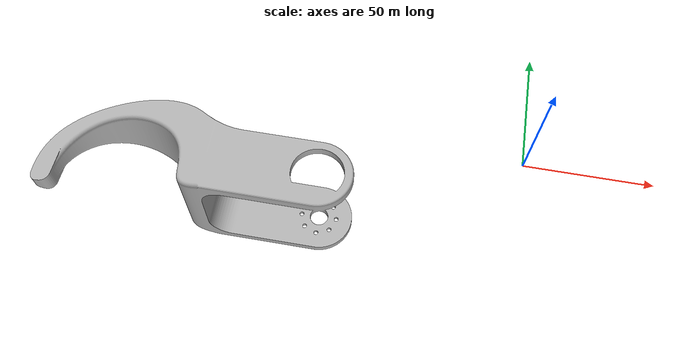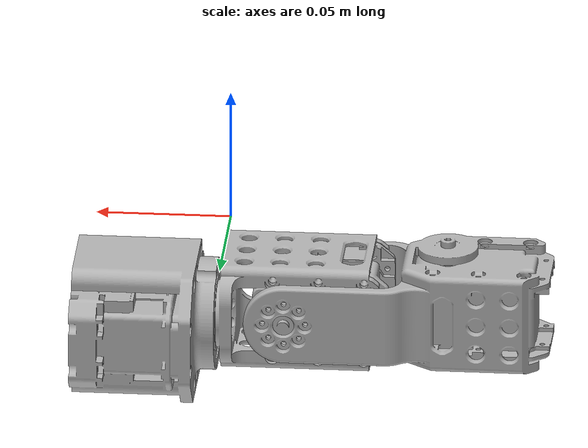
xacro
<?xml version="1.0"?>
<robot name="sence" xmlns:xacro="http://ros.org/wiki/xacro">

  <!-- Set up some variables and defaults -->
  <xacro:property name="pi" value="3.1415" />

  <material name="silver">
    <color rgba="0.7 0.7 0.7 1"/>
  </material>

  <xacro:macro name="default_inertial" params="mass">
    <inertial>
      <mass value="${mass}" />
      <inertia ixx="1.0" ixy="0.0" ixz="0.0" iyy="1.0" iyz="0.0" izz="1.0" />
    </inertial>
  </xacro:macro>

  <!-- Define Links-->
  <link name="base_link" />

  <link name="link1">
    <inertial>
        <origin xyz="0.029044932513473305 0.010265080427010284 -0.03814827760382364" rpy="0 0 0"/>
        <mass value="0.15187448298114298"/>
        <inertia ixx="5.3e-05" iyy="6.1e-05" izz="6.9e-05" ixy="-6e-06" iyz="0.0" ixz="0.0"/>
      </inertial>
      <visual>
        <origin xyz="0 0 0" rpy="0 0 0"/>
        <geometry>
          <mesh filename="package://test_sence/meshes/base_link.stl" />
        </geometry>
        <material name="silver"/>
      </visual>
      <collision>
        <origin xyz="0 0 0" rpy="0 0 0"/>
        <geometry>
          <mesh filename="package://test_sence/meshes/base_link.stl" />
        </geometry>
      </collision>
  </link>

  <link name="link2">
    <inertial>
        <origin xyz="-0.04078394902352935 -0.013231283994066126 0.00021684450055575039" rpy="0 0 0"/>
        <mass value="0.09734685103972182"/>
        <inertia ixx="2.2e-05" iyy="3.6e-05" izz="4e-05" ixy="-2e-06" iyz="0.0" ixz="0.0"/>
      </inertial>
      <visual>
        <origin xyz="-0.01348 -0.002676 0.038139" rpy="0 0 0"/>
        <geometry>
          <mesh filename="package://test_sence/meshes/HMMR_Leg_J2_v1_1.stl" />
        </geometry>
        <material name="silver"/>
      </visual>
      <collision>
        <origin xyz="-0.01348 -0.002676 0.038139" rpy="0 0 0"/>
        <geometry>
          <mesh filename="package://test_sence/meshes/HMMR_Leg_J2_v1_1.stl" />
        </geometry>
      </collision>
  </link>

  <link name="link3">
    <inertial>
        <origin xyz="-0.06366942125676311 -0.021943300476205383 0.0024103683252244337" rpy="0 0 0"/>
        <mass value="0.1208747488020619"/>
        <inertia ixx="3.4e-05" iyy="0.000102" izz="0.000104" ixy="1.4e-05" iyz="-1e-06" ixz="2e-06"/>
      </inertial>
      <visual>
        <origin xyz="0.020447 -0.009456 0.037939" rpy="0 0 0"/>
        <geometry>
          <mesh filename="package://test_sence/meshes/HMMR_Leg_J3_v1_1.stl" />
        </geometry>
        <material name="silver"/>
      </visual>
      <collision>
        <origin xyz="0.020447 -0.009456 0.037939" rpy="0 0 0"/>
        <geometry>
          <mesh filename="package://test_sence/meshes/HMMR_Leg_J3_v1_1.stl" />
        </geometry>
      </collision>
  </link>

  <link name="link4">
    <inertial>
        <origin xyz="-0.06827181090766318 0.01066089288586344 0.020893759814543007" rpy="0 0 0"/>
        <mass value="0.052701725493830516"/>
        <inertia ixx="1.8e-05" iyy="7.3e-05" izz="7.2e-05" ixy="1.4e-05" iyz="0.0" ixz="-1e-06"/>
      </inertial>
      <visual>
        <origin xyz="0.085454 0.010544 0.057414" rpy="0 0 0"/>
        <geometry>
          <mesh filename="package://test_sence/meshes/HMMR_Leg_J4_v1_1.stl" />
        </geometry>
        <material name="silver"/>
      </visual>
      <collision>
        <origin xyz="0.085454 0.010544 0.057414" rpy="0 0 0"/>
        <geometry>
          <mesh filename="package://test_sence/meshes/HMMR_Leg_J4_v1_1.stl" />
        </geometry>
      </collision>
  </link>

  <!-- Define Joints -->
  <joint name="joint0" type="fixed">
    <parent link="base_link"/>
    <child link="link1"/>
    <axis xyz="0 0 1"/>
    <origin xyz="0 0 0"/>
  </joint>

  <joint name="joint1" type="revolute">
    <parent link="link1"/>
    <child link="link2"/>
    <axis xyz="1 0 0"/>
    <origin xyz="0.01348 0.002676 -0.038139" rpy="0 0 0"/>
    <limit upper="4" lower="-4" effort="30" velocity="10"/>
  </joint>

  <joint name="joint2" type="revolute">
    <parent link="link2"/>
    <child link="link3"/>
    <axis xyz="0 1 0"/>
    <origin xyz="-0.033927 0.00678 0.0002" rpy="0 0 0"/>
    <limit upper="1.919862" lower="-1.919862" effort="30" velocity="10"/>
  </joint>

  <joint name="joint3" type="revolute">
    <parent link="link3"/>
    <child link="link4"/>
    <axis xyz="0 0 1"/>
    <origin xyz="-0.065007 -0.02 -0.019475" rpy="0 0 0"/>
    <limit upper="2.356194" lower="-2.268928" effort="30" velocity="10"/>
  </joint>

  <!-- Define Transmissions -->
  <transmission name="joint1_trans">
    <type>transmission_interface/SimpleTransmission</type>
    <actuator name="$joint1_motor">
      <mechanicalReduction>1</mechanicalReduction>
    </actuator>
    <joint name="joint1">
      <hardwareInterface>hardware_interface/PositionJointInterface</hardwareInterface>
    </joint>
  </transmission>

  <transmission name="joint2_trans">
    <type>transmission_interface/SimpleTransmission</type>
    <actuator name="$joint2_motor">
      <mechanicalReduction>1</mechanicalReduction>
    </actuator>
    <joint name="joint2">
      <hardwareInterface>hardware_interface/PositionJointInterface</hardwareInterface>
    </joint>
  </transmission>

  <transmission name="joint3_trans">
    <type>transmission_interface/SimpleTransmission</type>
    <actuator name="$joint3_motor">
      <mechanicalReduction>1</mechanicalReduction>
    </actuator>
    <joint name="joint3">
      <hardwareInterface>hardware_interface/PositionJointInterface</hardwareInterface>
    </joint>
  </transmission>

  <!-- Gazebo plugin for ROS Control -->
  <gazebo>
    <plugin name="gazebo_ros_control" filename="libgazebo_ros_control.so">
      <robotNamespace>/</robotNamespace>
    </plugin>
  </gazebo>

</robot>
